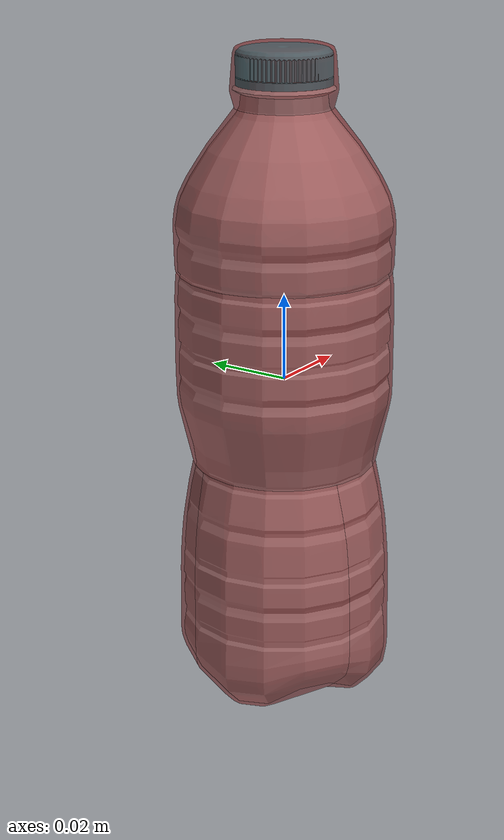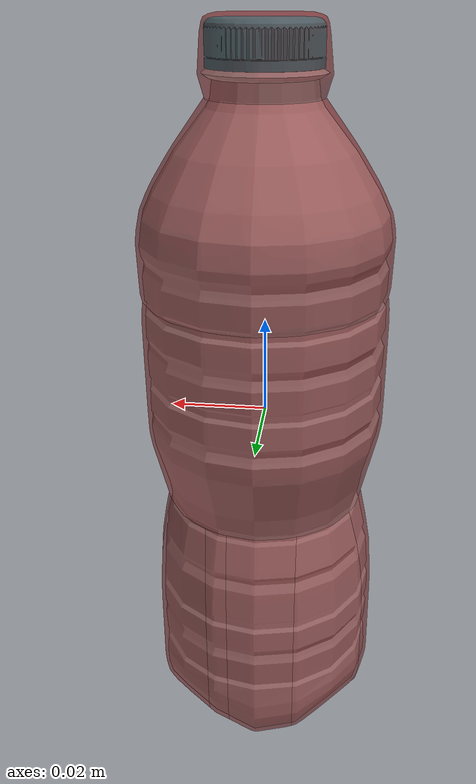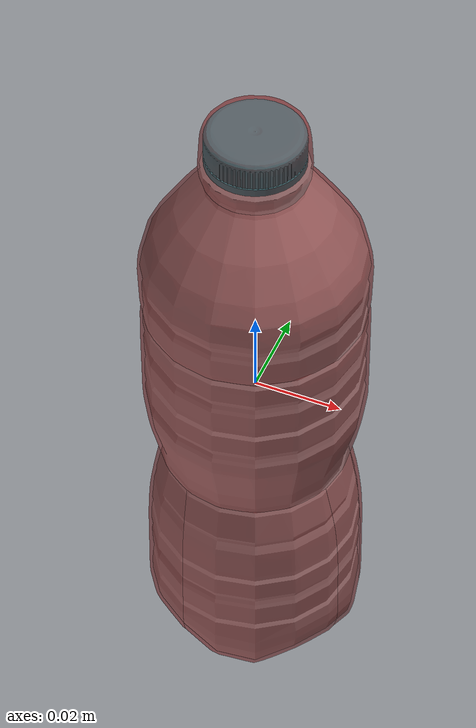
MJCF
<?xml version='1.0' encoding='utf-8'?>
<mujoco model="bottled_water_16">
  <asset>
    <mesh file="visual/model_normalized_0.obj" name="model_normalized_0_vis" scale="0.15 0.15 0.15" refquat="1.0 0.0 0.0 0.0" />
    <mesh file="visual/model_normalized_1.obj" name="model_normalized_1_vis" scale="0.15 0.15 0.15" refquat="1.0 0.0 0.0 0.0" />
    <mesh file="visual/model_normalized_2.obj" name="model_normalized_2_vis" scale="0.15 0.15 0.15" refquat="1.0 0.0 0.0 0.0" />
    <material name="Material.033" specular="0.5" shininess="0.06633249399999999" rgba="0.800000 0.800000 0.800000 1.0" />
    <material name="Material.034" specular="0.5" shininess="0.039528466" rgba="0.187849 0.754654 0.800000 1.0" />
    <material name="plastic_007" specular="0.5" shininess="0.047368226" rgba="0.800000 0.800000 0.800000 1.0" />
    <mesh file="collision/collision_mesh_collision_0.obj" name="bottled_collision_mesh_0" scale="0.15 0.15 0.15" refquat="1.0 0.0 0.0 0.0" />
    <mesh file="collision/collision_mesh_collision_1.obj" name="bottled_collision_mesh_1" scale="0.15 0.15 0.15" refquat="1.0 0.0 0.0 0.0" />
    <mesh file="collision/collision_mesh_collision_2.obj" name="bottled_collision_mesh_2" scale="0.15 0.15 0.15" refquat="1.0 0.0 0.0 0.0" />
    <mesh file="collision/collision_mesh_collision_3.obj" name="bottled_collision_mesh_3" scale="0.15 0.15 0.15" refquat="1.0 0.0 0.0 0.0" />
    <mesh file="collision/collision_mesh_collision_4.obj" name="bottled_collision_mesh_4" scale="0.15 0.15 0.15" refquat="1.0 0.0 0.0 0.0" />
    <mesh file="collision/collision_mesh_collision_5.obj" name="bottled_collision_mesh_5" scale="0.15 0.15 0.15" refquat="1.0 0.0 0.0 0.0" />
    <mesh file="collision/collision_mesh_collision_6.obj" name="bottled_collision_mesh_6" scale="0.15 0.15 0.15" refquat="1.0 0.0 0.0 0.0" />
    <mesh file="collision/collision_mesh_collision_7.obj" name="bottled_collision_mesh_7" scale="0.15 0.15 0.15" refquat="1.0 0.0 0.0 0.0" />
    <mesh file="collision/collision_mesh_collision_8.obj" name="bottled_collision_mesh_8" scale="0.15 0.15 0.15" refquat="1.0 0.0 0.0 0.0" />
    <mesh file="collision/collision_mesh_collision_9.obj" name="bottled_collision_mesh_9" scale="0.15 0.15 0.15" refquat="1.0 0.0 0.0 0.0" />
    <mesh file="collision/collision_mesh_collision_10.obj" name="bottled_collision_mesh_10" scale="0.15 0.15 0.15" refquat="1.0 0.0 0.0 0.0" />
    <mesh file="collision/collision_mesh_collision_11.obj" name="bottled_collision_mesh_11" scale="0.15 0.15 0.15" refquat="1.0 0.0 0.0 0.0" />
    </asset>
  <default>
    <default class="region">
      <geom group="1" conaffinity="0" contype="0" rgba="0 1 0 0" />
      </default>
    <default class="collision">
      <geom group="0" rgba="0.5 0 0 0.5" density="1000.0" />
      </default>
    </default>
  <worldbody>
    <body>
      <body name="object">
        <geom solimp="0.998 0.998 0.001" solref="0.001 1" density="100" friction="0.95 0.3 0.1" type="mesh" mesh="model_normalized_0_vis" conaffinity="0" contype="0" group="1" material="Material.034" />
        <geom solimp="0.998 0.998 0.001" solref="0.001 1" density="100" friction="0.95 0.3 0.1" type="mesh" mesh="model_normalized_1_vis" conaffinity="0" contype="0" group="1" material="plastic_007" />
        <geom solimp="0.998 0.998 0.001" solref="0.001 1" density="100" friction="0.95 0.3 0.1" type="mesh" mesh="model_normalized_2_vis" conaffinity="0" contype="0" group="1" material="Material.033" />
        <geom class="region" name="reg_bbox" type="box" pos="-8.247524999999977e-05 -0.00033600299999999927 -8.024624999999896e-05" size="0.023855862 0.0231190695 0.07425895725" />
        <geom mesh="bottled_collision_mesh_0" type="mesh" class="collision" />
        <geom mesh="bottled_collision_mesh_1" type="mesh" class="collision" />
        <geom mesh="bottled_collision_mesh_2" type="mesh" class="collision" />
        <geom mesh="bottled_collision_mesh_3" type="mesh" class="collision" />
        <geom mesh="bottled_collision_mesh_4" type="mesh" class="collision" />
        <geom mesh="bottled_collision_mesh_5" type="mesh" class="collision" />
        <geom mesh="bottled_collision_mesh_6" type="mesh" class="collision" />
        <geom mesh="bottled_collision_mesh_7" type="mesh" class="collision" />
        <geom mesh="bottled_collision_mesh_8" type="mesh" class="collision" />
        <geom mesh="bottled_collision_mesh_9" type="mesh" class="collision" />
        <geom mesh="bottled_collision_mesh_10" type="mesh" class="collision" />
        <geom mesh="bottled_collision_mesh_11" type="mesh" class="collision" />
        </body>
      </body>
    </worldbody>
  </mujoco>
